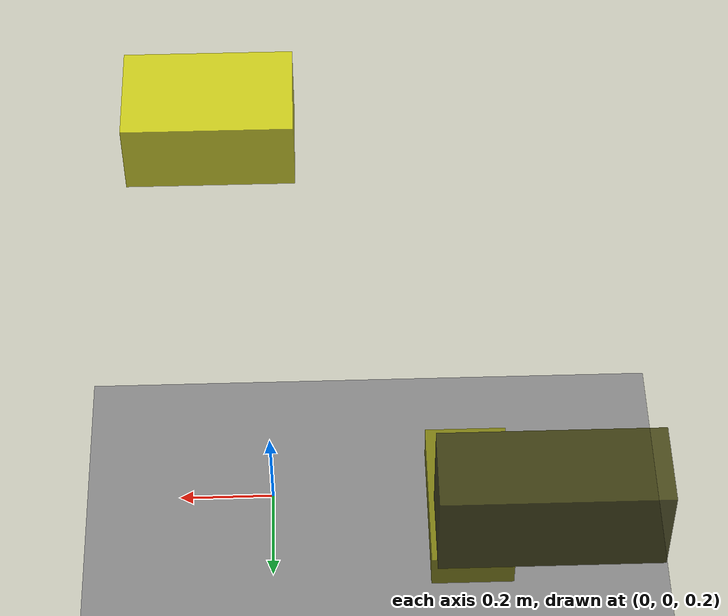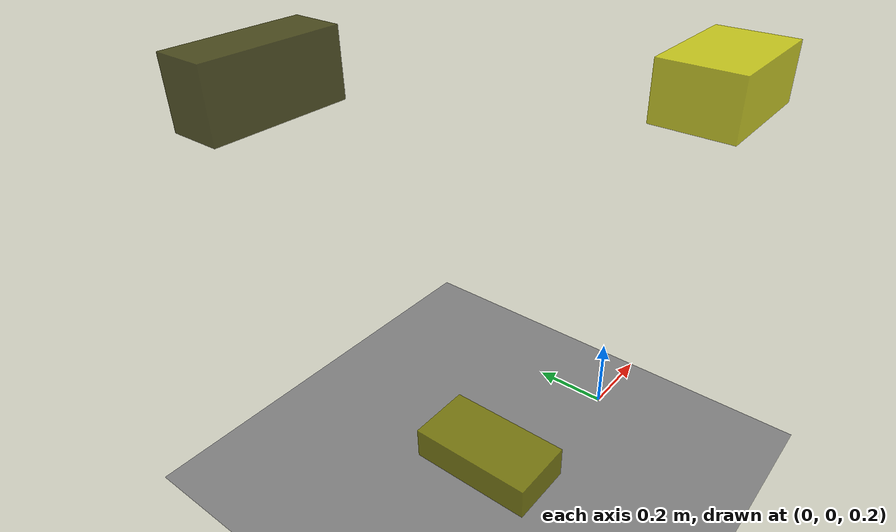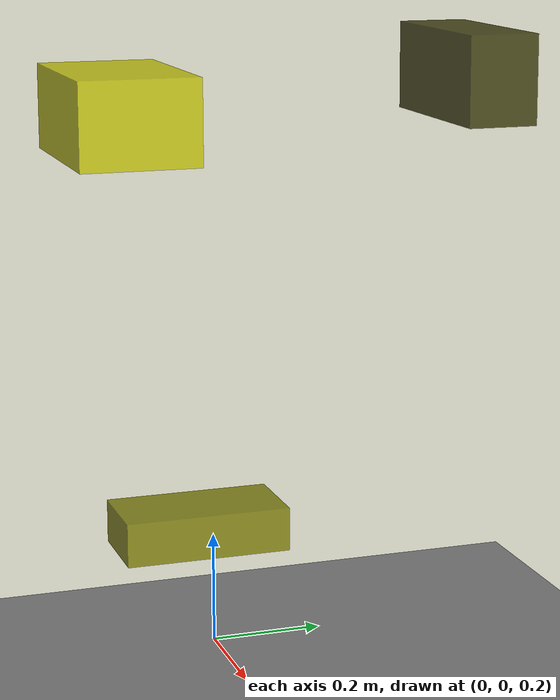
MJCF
<?xml version="1.0"?>
<mujoco model="obstacle_scene">
  <compiler angle="radian" coordinate="local"/>
  <option timestep="0.001" gravity="0 0 -9.81"/>

  <asset>
    <material name="obstacle_mat" rgba="0.8 0.8 0.0 0.8"/>
    <material name="ground_mat" rgba="0.5 0.5 0.5 1"/>
  </asset>

  <worldbody>
    <!-- Ground plane -->
    <geom name="ground" type="plane" size="3 3 0.1" material="ground_mat"/>

    <!-- Obstacles -->
    <body name="obstacle_0" pos="-0.492017 0.690842 1.160697">
      <geom name="obs_0" type="box" size="0.189339 0.071743 0.090981" rgba="0.2 0.2 0.0 0.8"/>
    </body>
    <body name="obstacle_1" pos="-0.416595 0.088410 0.276583">
      <geom name="obs_1" type="box" size="0.085978 0.166394 0.043834" rgba="0.5 0.5 0.0 0.8"/>
    </body>
    <body name="obstacle_2" pos="0.083874 -0.180350 1.176275">
      <geom name="obs_2" type="box" size="0.157565 0.101136 0.072607" rgba="0.8 0.8 0.0 0.8"/>
    </body>
  </worldbody>
</mujoco>
